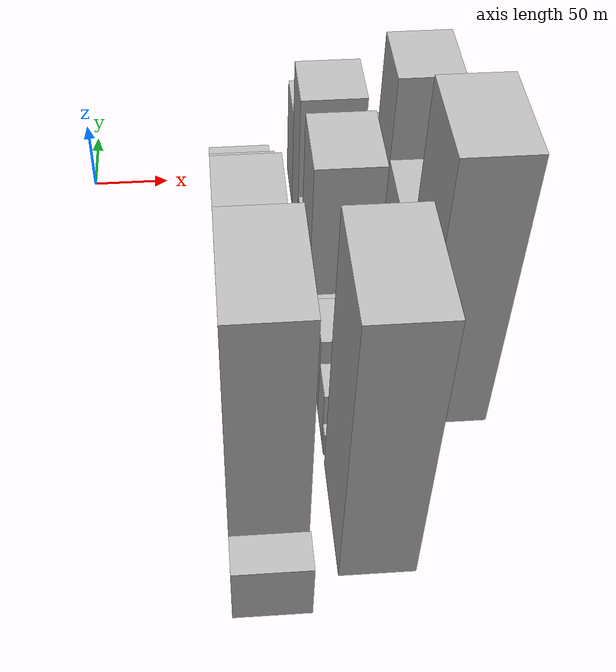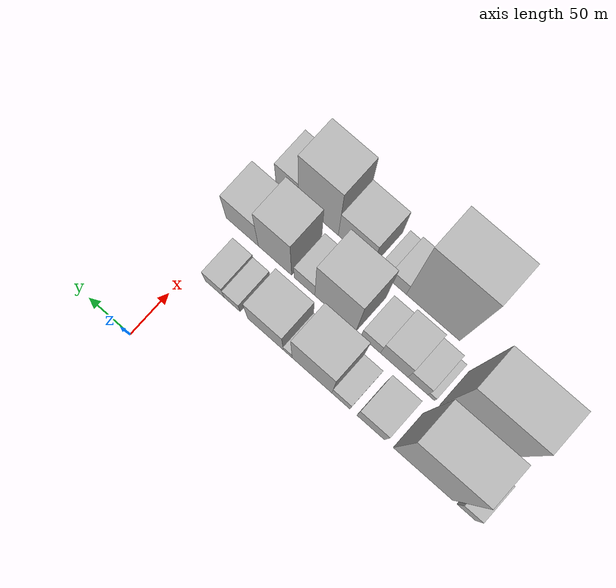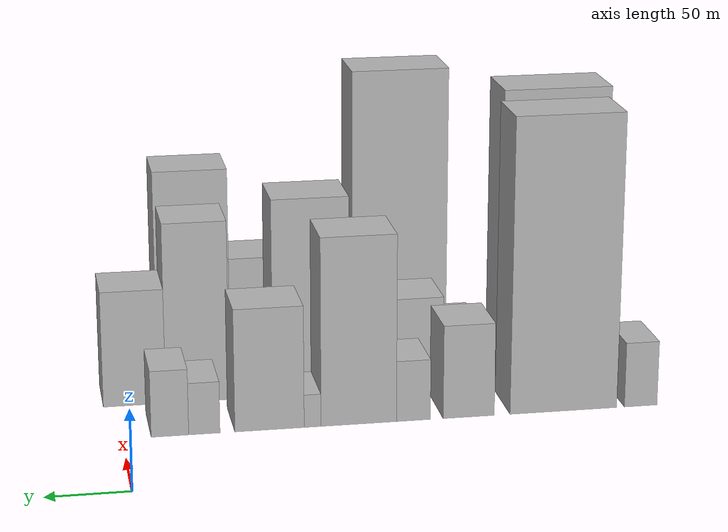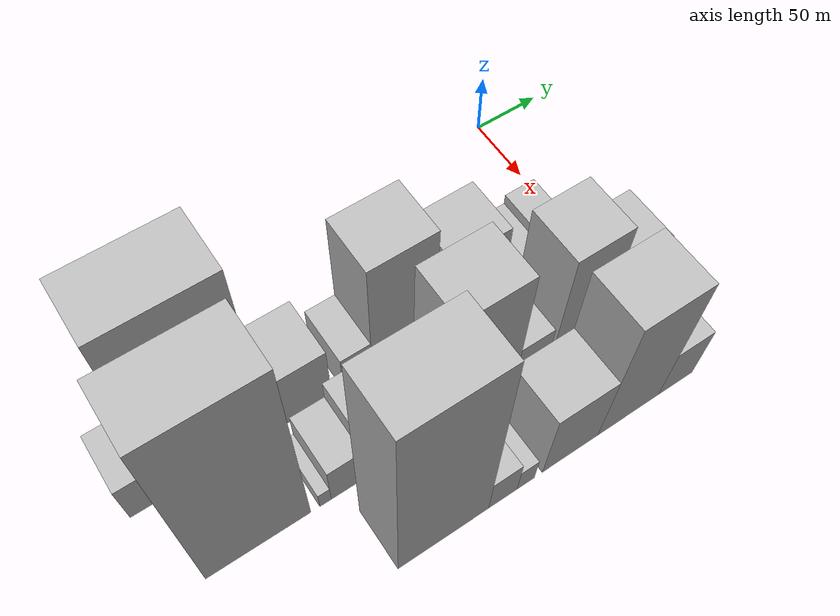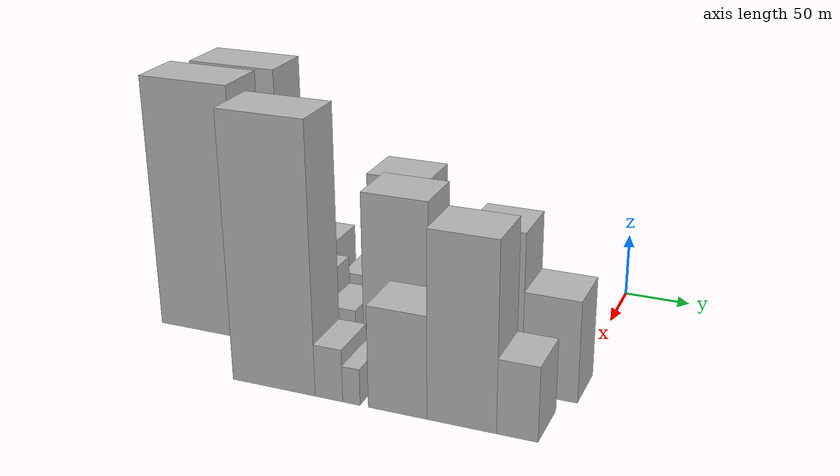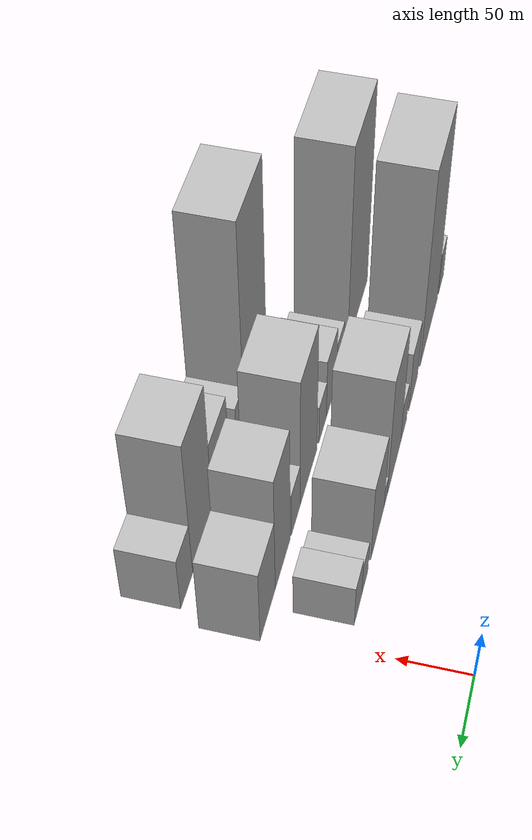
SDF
<sdf version="1.6">
 <world name="default">
  <model name="building_8">
   <static>1</static>
   <pose>100.0000 -322.6855 0 0.000000 0.000000 0.000000</pose>
   <link name="link">
    <pose>0 0 21.00 0 0 0</pose>
    <collision name="collision"><geometry><box><size>40.0000 21.0502 42.0000</size></box></geometry></collision>
    <visual name="visual">
     <cast_shadows>0</cast_shadows>
     <geometry><box><size>40.0000 21.0502 42.0000</size></box></geometry>
     <material>
      <script>
       <uri>model://HANNAS_wall/materials/scripts</uri>
       <uri>model://HANNAS_wall/materials/textures</uri>
       <name>vrc/HANNAS_wall</name>
      </script>
     </material>
    </visual>
   </link>
  </model>
  <model name="building_9">
   <static>1</static>
   <pose>100.0000 -273.0492 0 0.000000 0.000000 0.000000</pose>
   <link name="link">
    <pose>0 0 94.50 0 0 0</pose>
    <collision name="collision"><geometry><box><size>40.0000 68.2222 189.0000</size></box></geometry></collision>
    <visual name="visual">
     <cast_shadows>0</cast_shadows>
     <geometry><box><size>40.0000 68.2222 189.0000</size></box></geometry>
     <material>
      <script>
       <uri>model://HANNAS_wall/materials/scripts</uri>
       <uri>model://HANNAS_wall/materials/textures</uri>
       <name>vrc/HANNAS_wall</name>
      </script>
     </material>
    </visual>
   </link>
  </model>
  <model name="building_10">
   <static>1</static>
   <pose>100.0000 -212.8219 0 0.000000 0.000000 0.000000</pose>
   <link name="link">
    <pose>0 0 30.00 0 0 0</pose>
    <collision name="collision"><geometry><box><size>40.0000 32.2324 60.0000</size></box></geometry></collision>
    <visual name="visual">
     <cast_shadows>0</cast_shadows>
     <geometry><box><size>40.0000 32.2324 60.0000</size></box></geometry>
     <material>
      <script>
       <uri>model://HANNAS_wall/materials/scripts</uri>
       <uri>model://HANNAS_wall/materials/textures</uri>
       <name>vrc/HANNAS_wall</name>
      </script>
     </material>
    </visual>
   </link>
  </model>
  <model name="building_11">
   <static>1</static>
   <pose>100.0000 -178.1105 0 0.000000 0.000000 0.000000</pose>
   <link name="link">
    <pose>0 0 19.50 0 0 0</pose>
    <collision name="collision"><geometry><box><size>40.0000 21.1903 39.0000</size></box></geometry></collision>
    <visual name="visual">
     <cast_shadows>0</cast_shadows>
     <geometry><box><size>40.0000 21.1903 39.0000</size></box></geometry>
     <material>
      <script>
       <uri>model://HANNAS_wall/materials/scripts</uri>
       <uri>model://HANNAS_wall/materials/textures</uri>
       <name>vrc/HANNAS_wall</name>
      </script>
     </material>
    </visual>
   </link>
  </model>
  <model name="building_12">
   <static>1</static>
   <pose>100.0000 -144.1233 0 0.000000 0.000000 0.000000</pose>
   <link name="link">
    <pose>0 0 60.00 0 0 0</pose>
    <collision name="collision"><geometry><box><size>40.0000 46.7842 120.0000</size></box></geometry></collision>
    <visual name="visual">
     <cast_shadows>0</cast_shadows>
     <geometry><box><size>40.0000 46.7842 120.0000</size></box></geometry>
     <material>
      <script>
       <uri>model://HANNAS_wall/materials/scripts</uri>
       <uri>model://HANNAS_wall/materials/textures</uri>
       <name>vrc/HANNAS_wall</name>
      </script>
     </material>
    </visual>
   </link>
  </model>
  <model name="building_13">
   <static>1</static>
   <pose>100.0000 -115.5351 0 0.000000 0.000000 0.000000</pose>
   <link name="link">
    <pose>0 0 10.50 0 0 0</pose>
    <collision name="collision"><geometry><box><size>40.0000 10.3920 21.0000</size></box></geometry></collision>
    <visual name="visual">
     <cast_shadows>0</cast_shadows>
     <geometry><box><size>40.0000 10.3920 21.0000</size></box></geometry>
     <material>
      <script>
       <uri>model://HANNAS_wall/materials/scripts</uri>
       <uri>model://HANNAS_wall/materials/textures</uri>
       <name>vrc/HANNAS_wall</name>
      </script>
     </material>
    </visual>
   </link>
  </model>
  <model name="building_14">
   <static>1</static>
   <pose>100.0000 -89.1203 0 0.000000 0.000000 0.000000</pose>
   <link name="link">
    <pose>0 0 39.00 0 0 0</pose>
    <collision name="collision"><geometry><box><size>40.0000 42.4377 78.0000</size></box></geometry></collision>
    <visual name="visual">
     <cast_shadows>0</cast_shadows>
     <geometry><box><size>40.0000 42.4377 78.0000</size></box></geometry>
     <material>
      <script>
       <uri>model://HANNAS_wall/materials/scripts</uri>
       <uri>model://HANNAS_wall/materials/textures</uri>
       <name>vrc/HANNAS_wall</name>
      </script>
     </material>
    </visual>
   </link>
  </model>
  <model name="building_15">
   <static>1</static>
   <pose>100.0000 -49.3917 0 0.000000 0.000000 0.000000</pose>
   <link name="link">
    <pose>0 0 16.50 0 0 0</pose>
    <collision name="collision"><geometry><box><size>40.0000 19.0196 33.0000</size></box></geometry></collision>
    <visual name="visual">
     <cast_shadows>0</cast_shadows>
     <geometry><box><size>40.0000 19.0196 33.0000</size></box></geometry>
     <material>
      <script>
       <uri>model://HANNAS_wall/materials/scripts</uri>
       <uri>model://HANNAS_wall/materials/textures</uri>
       <name>vrc/HANNAS_wall</name>
      </script>
     </material>
    </visual>
   </link>
  </model>
  <model name="building_16">
   <static>1</static>
   <pose>100.0000 -28.5650 0 0.000000 0.000000 0.000000</pose>
   <link name="link">
    <pose>0 0 21.00 0 0 0</pose>
    <collision name="collision"><geometry><box><size>40.0000 22.6339 42.0000</size></box></geometry></collision>
    <visual name="visual">
     <cast_shadows>0</cast_shadows>
     <geometry><box><size>40.0000 22.6339 42.0000</size></box></geometry>
     <material>
      <script>
       <uri>model://HANNAS_wall/materials/scripts</uri>
       <uri>model://HANNAS_wall/materials/textures</uri>
       <name>vrc/HANNAS_wall</name>
      </script>
     </material>
    </visual>
   </link>
  </model>
  <model name="building_40">
   <static>1</static>
   <pose>155.0000 -279.4858 0 0.000000 0.000000 0.000000</pose>
   <link name="link">
    <pose>0 0 96.00 0 0 0</pose>
    <collision name="collision"><geometry><box><size>40.0000 68.6106 192.0000</size></box></geometry></collision>
    <visual name="visual">
     <cast_shadows>0</cast_shadows>
     <geometry><box><size>40.0000 68.6106 192.0000</size></box></geometry>
     <material>
      <script>
       <uri>model://HANNAS_wall/materials/scripts</uri>
       <uri>model://HANNAS_wall/materials/textures</uri>
       <name>vrc/HANNAS_wall</name>
      </script>
     </material>
    </visual>
   </link>
  </model>
  <model name="building_41">
   <static>1</static>
   <pose>155.0000 -235.2653 0 0.000000 0.000000 0.000000</pose>
   <link name="link">
    <pose>0 0 9.00 0 0 0</pose>
    <collision name="collision"><geometry><box><size>40.0000 7.8304 18.0000</size></box></geometry></collision>
    <visual name="visual">
     <cast_shadows>0</cast_shadows>
     <geometry><box><size>40.0000 7.8304 18.0000</size></box></geometry>
     <material>
      <script>
       <uri>model://HANNAS_wall/materials/scripts</uri>
       <uri>model://HANNAS_wall/materials/textures</uri>
       <name>vrc/HANNAS_wall</name>
      </script>
     </material>
    </visual>
   </link>
  </model>
  <model name="building_42">
   <static>1</static>
   <pose>155.0000 -219.8077 0 0.000000 0.000000 0.000000</pose>
   <link name="link">
    <pose>0 0 21.00 0 0 0</pose>
    <collision name="collision"><geometry><box><size>40.0000 23.0848 42.0000</size></box></geometry></collision>
    <visual name="visual">
     <cast_shadows>0</cast_shadows>
     <geometry><box><size>40.0000 23.0848 42.0000</size></box></geometry>
     <material>
      <script>
       <uri>model://HANNAS_wall/materials/scripts</uri>
       <uri>model://HANNAS_wall/materials/textures</uri>
       <name>vrc/HANNAS_wall</name>
      </script>
     </material>
    </visual>
   </link>
  </model>
  <model name="building_43">
   <static>1</static>
   <pose>155.0000 -192.2204 0 0.000000 0.000000 0.000000</pose>
   <link name="link">
    <pose>0 0 30.00 0 0 0</pose>
    <collision name="collision"><geometry><box><size>40.0000 32.0897 60.0000</size></box></geometry></collision>
    <visual name="visual">
     <cast_shadows>0</cast_shadows>
     <geometry><box><size>40.0000 32.0897 60.0000</size></box></geometry>
     <material>
      <script>
       <uri>model://HANNAS_wall/materials/scripts</uri>
       <uri>model://HANNAS_wall/materials/textures</uri>
       <name>vrc/HANNAS_wall</name>
      </script>
     </material>
    </visual>
   </link>
  </model>
  <model name="building_44">
   <static>1</static>
   <pose>155.0000 -164.7455 0 0.000000 0.000000 0.000000</pose>
   <link name="link">
    <pose>0 0 19.50 0 0 0</pose>
    <collision name="collision"><geometry><box><size>40.0000 22.8601 39.0000</size></box></geometry></collision>
    <visual name="visual">
     <cast_shadows>0</cast_shadows>
     <geometry><box><size>40.0000 22.8601 39.0000</size></box></geometry>
     <material>
      <script>
       <uri>model://HANNAS_wall/materials/scripts</uri>
       <uri>model://HANNAS_wall/materials/textures</uri>
       <name>vrc/HANNAS_wall</name>
      </script>
     </material>
    </visual>
   </link>
  </model>
  <model name="building_45">
   <static>1</static>
   <pose>155.0000 -122.9405 0 0.000000 0.000000 0.000000</pose>
   <link name="link">
    <pose>0 0 64.50 0 0 0</pose>
    <collision name="collision"><geometry><box><size>40.0000 48.7498 129.0000</size></box></geometry></collision>
    <visual name="visual">
     <cast_shadows>0</cast_shadows>
     <geometry><box><size>40.0000 48.7498 129.0000</size></box></geometry>
     <material>
      <script>
       <uri>model://HANNAS_wall/materials/scripts</uri>
       <uri>model://HANNAS_wall/materials/textures</uri>
       <name>vrc/HANNAS_wall</name>
      </script>
     </material>
    </visual>
   </link>
  </model>
  <model name="building_46">
   <static>1</static>
   <pose>155.0000 -86.2592 0 0.000000 0.000000 0.000000</pose>
   <link name="link">
    <pose>0 0 22.50 0 0 0</pose>
    <collision name="collision"><geometry><box><size>40.0000 24.6128 45.0000</size></box></geometry></collision>
    <visual name="visual">
     <cast_shadows>0</cast_shadows>
     <geometry><box><size>40.0000 24.6128 45.0000</size></box></geometry>
     <material>
      <script>
       <uri>model://HANNAS_wall/materials/scripts</uri>
       <uri>model://HANNAS_wall/materials/textures</uri>
       <name>vrc/HANNAS_wall</name>
      </script>
     </material>
    </visual>
   </link>
  </model>
  <model name="building_47">
   <static>1</static>
   <pose>155.0000 -50.9392 0 0.000000 0.000000 0.000000</pose>
   <link name="link">
    <pose>0 0 58.50 0 0 0</pose>
    <collision name="collision"><geometry><box><size>40.0000 40.0271 117.0000</size></box></geometry></collision>
    <visual name="visual">
     <cast_shadows>0</cast_shadows>
     <geometry><box><size>40.0000 40.0271 117.0000</size></box></geometry>
     <material>
      <script>
       <uri>model://HANNAS_wall/materials/scripts</uri>
       <uri>model://HANNAS_wall/materials/textures</uri>
       <name>vrc/HANNAS_wall</name>
      </script>
     </material>
    </visual>
   </link>
  </model>
  <model name="building_48">
   <static>1</static>
   <pose>155.0000 -11.4547 0 0.000000 0.000000 0.000000</pose>
   <link name="link">
    <pose>0 0 37.50 0 0 0</pose>
    <collision name="collision"><geometry><box><size>40.0000 38.9421 75.0000</size></box></geometry></collision>
    <visual name="visual">
     <cast_shadows>0</cast_shadows>
     <geometry><box><size>40.0000 38.9421 75.0000</size></box></geometry>
     <material>
      <script>
       <uri>model://HANNAS_wall/materials/scripts</uri>
       <uri>model://HANNAS_wall/materials/textures</uri>
       <name>vrc/HANNAS_wall</name>
      </script>
     </material>
    </visual>
   </link>
  </model>
  <model name="building_73">
   <static>1</static>
   <pose>210.0000 -190.0731 0 0.000000 0.000000 0.000000</pose>
   <link name="link">
    <pose>0 0 97.50 0 0 0</pose>
    <collision name="collision"><geometry><box><size>40.0000 62.7130 195.0000</size></box></geometry></collision>
    <visual name="visual">
     <cast_shadows>0</cast_shadows>
     <geometry><box><size>40.0000 62.7130 195.0000</size></box></geometry>
     <material>
      <script>
       <uri>model://HANNAS_wall/materials/scripts</uri>
       <uri>model://HANNAS_wall/materials/textures</uri>
       <name>vrc/HANNAS_wall</name>
      </script>
     </material>
    </visual>
   </link>
  </model>
  <model name="building_74">
   <static>1</static>
   <pose>210.0000 -148.5281 0 0.000000 0.000000 0.000000</pose>
   <link name="link">
    <pose>0 0 19.50 0 0 0</pose>
    <collision name="collision"><geometry><box><size>40.0000 20.3769 39.0000</size></box></geometry></collision>
    <visual name="visual">
     <cast_shadows>0</cast_shadows>
     <geometry><box><size>40.0000 20.3769 39.0000</size></box></geometry>
     <material>
      <script>
       <uri>model://HANNAS_wall/materials/scripts</uri>
       <uri>model://HANNAS_wall/materials/textures</uri>
       <name>vrc/HANNAS_wall</name>
      </script>
     </material>
    </visual>
   </link>
  </model>
  <model name="building_75">
   <static>1</static>
   <pose>210.0000 -131.9773 0 0.000000 0.000000 0.000000</pose>
   <link name="link">
    <pose>0 0 13.50 0 0 0</pose>
    <collision name="collision"><geometry><box><size>40.0000 12.7246 27.0000</size></box></geometry></collision>
    <visual name="visual">
     <cast_shadows>0</cast_shadows>
     <geometry><box><size>40.0000 12.7246 27.0000</size></box></geometry>
     <material>
      <script>
       <uri>model://HANNAS_wall/materials/scripts</uri>
       <uri>model://HANNAS_wall/materials/textures</uri>
       <name>vrc/HANNAS_wall</name>
      </script>
     </material>
    </visual>
   </link>
  </model>
  <model name="building_76">
   <static>1</static>
   <pose>210.0000 -98.7739 0 0.000000 0.000000 0.000000</pose>
   <link name="link">
    <pose>0 0 37.50 0 0 0</pose>
    <collision name="collision"><geometry><box><size>40.0000 41.6821 75.0000</size></box></geometry></collision>
    <visual name="visual">
     <cast_shadows>0</cast_shadows>
     <geometry><box><size>40.0000 41.6821 75.0000</size></box></geometry>
     <material>
      <script>
       <uri>model://HANNAS_wall/materials/scripts</uri>
       <uri>model://HANNAS_wall/materials/textures</uri>
       <name>vrc/HANNAS_wall</name>
      </script>
     </material>
    </visual>
   </link>
  </model>
  <model name="building_77">
   <static>1</static>
   <pose>210.0000 -54.0865 0 0.000000 0.000000 0.000000</pose>
   <link name="link">
    <pose>0 0 67.50 0 0 0</pose>
    <collision name="collision"><geometry><box><size>40.0000 47.6928 135.0000</size></box></geometry></collision>
    <visual name="visual">
     <cast_shadows>0</cast_shadows>
     <geometry><box><size>40.0000 47.6928 135.0000</size></box></geometry>
     <material>
      <script>
       <uri>model://HANNAS_wall/materials/scripts</uri>
       <uri>model://HANNAS_wall/materials/textures</uri>
       <name>vrc/HANNAS_wall</name>
      </script>
     </material>
    </visual>
   </link>
  </model>
  <model name="building_78">
   <static>1</static>
   <pose>210.0000 -16.4077 0 0.000000 0.000000 0.000000</pose>
   <link name="link">
    <pose>0 0 27.00 0 0 0</pose>
    <collision name="collision"><geometry><box><size>40.0000 27.6648 54.0000</size></box></geometry></collision>
    <visual name="visual">
     <cast_shadows>0</cast_shadows>
     <geometry><box><size>40.0000 27.6648 54.0000</size></box></geometry>
     <material>
      <script>
       <uri>model://HANNAS_wall/materials/scripts</uri>
       <uri>model://HANNAS_wall/materials/textures</uri>
       <name>vrc/HANNAS_wall</name>
      </script>
     </material>
    </visual>
   </link>
  </model>
 </world>
</sdf>
